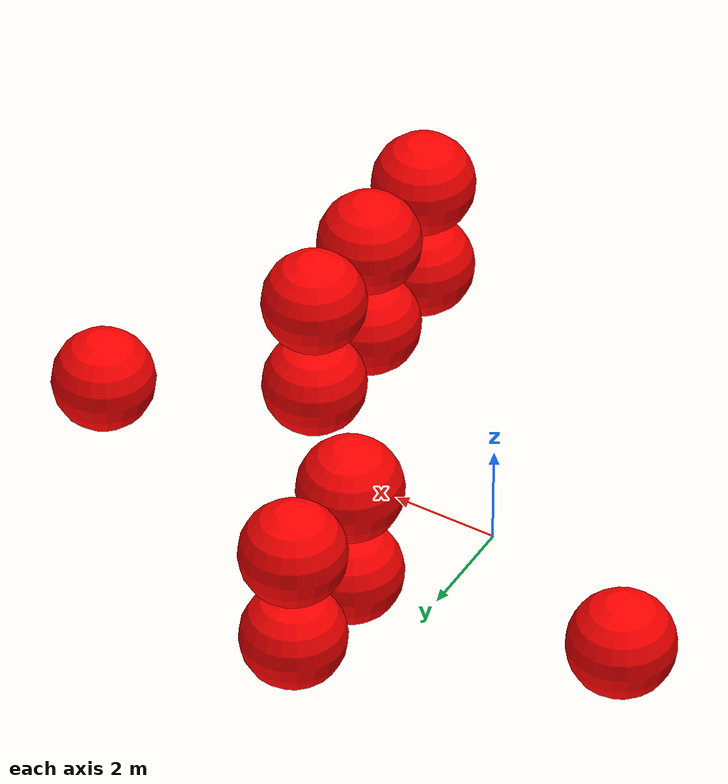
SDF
<sdf version="1.8">
 <world name="3d_world">
  <model name="obstacle_12" canonical_link="obstacle">
   <static>true</static>
   <pose relative_to="world">-3.87 2.22 1.00 0 0 0</pose>
   <link name="obstacle">
    <pose relative_to="__model__">0.0 0 0.0 0 0 0</pose>
    <visual name="visual">
     <geometry><sphere><radius>1.00</radius></sphere></geometry>
     <material>
      <ambient>1.0 0.0 0.0 1</ambient>
      <diffuse>1.0 0.0 0.0 1</diffuse>
      <specular>1.0 0.0 0.0 1</specular>
     </material>
    </visual>
    <collision name="collision"><geometry><sphere><radius>1.00</radius></sphere></geometry></collision>
    <enable_gravity>false</enable_gravity>
   </link>
   <plugin filename="ignition-gazebo-velocity-control-system" name="ignition::gazebo::systems::VelocityControl">
    <initial_linear>0.00 0.00 0.00</initial_linear>
    <initial_angular>0 0 0</initial_angular>
   </plugin>
   <plugin filename="ignition-gazebo-odometry-publisher-system" name="ignition::gazebo::systems::OdometryPublisher">
    <dimensions>3</dimensions>
   </plugin>
  </model>
  <model name="obstacle_13" canonical_link="obstacle">
   <static>true</static>
   <pose relative_to="world">2.30 1.16 -1.00 0 0 0</pose>
   <link name="obstacle">
    <pose relative_to="__model__">0.0 0 0.0 0 0 0</pose>
    <visual name="visual">
     <geometry><sphere><radius>1.00</radius></sphere></geometry>
     <material>
      <ambient>1.0 0.0 0.0 1</ambient>
      <diffuse>1.0 0.0 0.0 1</diffuse>
      <specular>1.0 0.0 0.0 1</specular>
     </material>
    </visual>
    <collision name="collision"><geometry><sphere><radius>1.00</radius></sphere></geometry></collision>
    <enable_gravity>false</enable_gravity>
   </link>
   <plugin filename="ignition-gazebo-velocity-control-system" name="ignition::gazebo::systems::VelocityControl">
    <initial_linear>0.00 0.00 0.00</initial_linear>
    <initial_angular>0 0 0</initial_angular>
   </plugin>
   <plugin filename="ignition-gazebo-odometry-publisher-system" name="ignition::gazebo::systems::OdometryPublisher">
    <dimensions>3</dimensions>
   </plugin>
  </model>
  <model name="obstacle_14" canonical_link="obstacle">
   <static>true</static>
   <pose relative_to="world">2.30 3.16 -1.00 0 0 0</pose>
   <link name="obstacle">
    <pose relative_to="__model__">0.0 0 0.0 0 0 0</pose>
    <visual name="visual">
     <geometry><sphere><radius>1.00</radius></sphere></geometry>
     <material>
      <ambient>1.0 0.0 0.0 1</ambient>
      <diffuse>1.0 0.0 0.0 1</diffuse>
      <specular>1.0 0.0 0.0 1</specular>
     </material>
    </visual>
    <collision name="collision"><geometry><sphere><radius>1.00</radius></sphere></geometry></collision>
    <enable_gravity>false</enable_gravity>
   </link>
   <plugin filename="ignition-gazebo-velocity-control-system" name="ignition::gazebo::systems::VelocityControl">
    <initial_linear>0.00 0.00 0.00</initial_linear>
    <initial_angular>0 0 0</initial_angular>
   </plugin>
   <plugin filename="ignition-gazebo-odometry-publisher-system" name="ignition::gazebo::systems::OdometryPublisher">
    <dimensions>3</dimensions>
   </plugin>
  </model>
  <model name="obstacle_15" canonical_link="obstacle">
   <static>true</static>
   <pose relative_to="world">2.30 1.16 1.00 0 0 0</pose>
   <link name="obstacle">
    <pose relative_to="__model__">0.0 0 0.0 0 0 0</pose>
    <visual name="visual">
     <geometry><sphere><radius>1.00</radius></sphere></geometry>
     <material>
      <ambient>1.0 0.0 0.0 1</ambient>
      <diffuse>1.0 0.0 0.0 1</diffuse>
      <specular>1.0 0.0 0.0 1</specular>
     </material>
    </visual>
    <collision name="collision"><geometry><sphere><radius>1.00</radius></sphere></geometry></collision>
    <enable_gravity>false</enable_gravity>
   </link>
   <plugin filename="ignition-gazebo-velocity-control-system" name="ignition::gazebo::systems::VelocityControl">
    <initial_linear>0.00 0.00 0.00</initial_linear>
    <initial_angular>0 0 0</initial_angular>
   </plugin>
   <plugin filename="ignition-gazebo-odometry-publisher-system" name="ignition::gazebo::systems::OdometryPublisher">
    <dimensions>3</dimensions>
   </plugin>
  </model>
  <model name="obstacle_16" canonical_link="obstacle">
   <static>true</static>
   <pose relative_to="world">2.30 3.16 1.00 0 0 0</pose>
   <link name="obstacle">
    <pose relative_to="__model__">0.0 0 0.0 0 0 0</pose>
    <visual name="visual">
     <geometry><sphere><radius>1.00</radius></sphere></geometry>
     <material>
      <ambient>1.0 0.0 0.0 1</ambient>
      <diffuse>1.0 0.0 0.0 1</diffuse>
      <specular>1.0 0.0 0.0 1</specular>
     </material>
    </visual>
    <collision name="collision"><geometry><sphere><radius>1.00</radius></sphere></geometry></collision>
    <enable_gravity>false</enable_gravity>
   </link>
   <plugin filename="ignition-gazebo-velocity-control-system" name="ignition::gazebo::systems::VelocityControl">
    <initial_linear>0.00 0.00 0.00</initial_linear>
    <initial_angular>0 0 0</initial_angular>
   </plugin>
   <plugin filename="ignition-gazebo-odometry-publisher-system" name="ignition::gazebo::systems::OdometryPublisher">
    <dimensions>3</dimensions>
   </plugin>
  </model>
  <model name="obstacle_17" canonical_link="obstacle">
   <static>true</static>
   <pose relative_to="world">5.52 -6.94 -1.00 0 0 0</pose>
   <link name="obstacle">
    <pose relative_to="__model__">0.0 0 0.0 0 0 0</pose>
    <visual name="visual">
     <geometry><sphere><radius>1.00</radius></sphere></geometry>
     <material>
      <ambient>1.0 0.0 0.0 1</ambient>
      <diffuse>1.0 0.0 0.0 1</diffuse>
      <specular>1.0 0.0 0.0 1</specular>
     </material>
    </visual>
    <collision name="collision"><geometry><sphere><radius>1.00</radius></sphere></geometry></collision>
    <enable_gravity>false</enable_gravity>
   </link>
   <plugin filename="ignition-gazebo-velocity-control-system" name="ignition::gazebo::systems::VelocityControl">
    <initial_linear>0.00 0.00 0.00</initial_linear>
    <initial_angular>0 0 0</initial_angular>
   </plugin>
   <plugin filename="ignition-gazebo-odometry-publisher-system" name="ignition::gazebo::systems::OdometryPublisher">
    <dimensions>3</dimensions>
   </plugin>
  </model>
  <model name="obstacle_18" canonical_link="obstacle">
   <static>true</static>
   <pose relative_to="world">5.52 -4.94 -1.00 0 0 0</pose>
   <link name="obstacle">
    <pose relative_to="__model__">0.0 0 0.0 0 0 0</pose>
    <visual name="visual">
     <geometry><sphere><radius>1.00</radius></sphere></geometry>
     <material>
      <ambient>1.0 0.0 0.0 1</ambient>
      <diffuse>1.0 0.0 0.0 1</diffuse>
      <specular>1.0 0.0 0.0 1</specular>
     </material>
    </visual>
    <collision name="collision"><geometry><sphere><radius>1.00</radius></sphere></geometry></collision>
    <enable_gravity>false</enable_gravity>
   </link>
   <plugin filename="ignition-gazebo-velocity-control-system" name="ignition::gazebo::systems::VelocityControl">
    <initial_linear>0.00 0.00 0.00</initial_linear>
    <initial_angular>0 0 0</initial_angular>
   </plugin>
   <plugin filename="ignition-gazebo-odometry-publisher-system" name="ignition::gazebo::systems::OdometryPublisher">
    <dimensions>3</dimensions>
   </plugin>
  </model>
  <model name="obstacle_19" canonical_link="obstacle">
   <static>true</static>
   <pose relative_to="world">5.52 -2.94 -1.00 0 0 0</pose>
   <link name="obstacle">
    <pose relative_to="__model__">0.0 0 0.0 0 0 0</pose>
    <visual name="visual">
     <geometry><sphere><radius>1.00</radius></sphere></geometry>
     <material>
      <ambient>1.0 0.0 0.0 1</ambient>
      <diffuse>1.0 0.0 0.0 1</diffuse>
      <specular>1.0 0.0 0.0 1</specular>
     </material>
    </visual>
    <collision name="collision"><geometry><sphere><radius>1.00</radius></sphere></geometry></collision>
    <enable_gravity>false</enable_gravity>
   </link>
   <plugin filename="ignition-gazebo-velocity-control-system" name="ignition::gazebo::systems::VelocityControl">
    <initial_linear>0.00 0.00 0.00</initial_linear>
    <initial_angular>0 0 0</initial_angular>
   </plugin>
   <plugin filename="ignition-gazebo-odometry-publisher-system" name="ignition::gazebo::systems::OdometryPublisher">
    <dimensions>3</dimensions>
   </plugin>
  </model>
  <model name="obstacle_20" canonical_link="obstacle">
   <static>true</static>
   <pose relative_to="world">5.52 -6.94 1.00 0 0 0</pose>
   <link name="obstacle">
    <pose relative_to="__model__">0.0 0 0.0 0 0 0</pose>
    <visual name="visual">
     <geometry><sphere><radius>1.00</radius></sphere></geometry>
     <material>
      <ambient>1.0 0.0 0.0 1</ambient>
      <diffuse>1.0 0.0 0.0 1</diffuse>
      <specular>1.0 0.0 0.0 1</specular>
     </material>
    </visual>
    <collision name="collision"><geometry><sphere><radius>1.00</radius></sphere></geometry></collision>
    <enable_gravity>false</enable_gravity>
   </link>
   <plugin filename="ignition-gazebo-velocity-control-system" name="ignition::gazebo::systems::VelocityControl">
    <initial_linear>0.00 0.00 0.00</initial_linear>
    <initial_angular>0 0 0</initial_angular>
   </plugin>
   <plugin filename="ignition-gazebo-odometry-publisher-system" name="ignition::gazebo::systems::OdometryPublisher">
    <dimensions>3</dimensions>
   </plugin>
  </model>
  <model name="obstacle_21" canonical_link="obstacle">
   <static>true</static>
   <pose relative_to="world">5.52 -4.94 1.00 0 0 0</pose>
   <link name="obstacle">
    <pose relative_to="__model__">0.0 0 0.0 0 0 0</pose>
    <visual name="visual">
     <geometry><sphere><radius>1.00</radius></sphere></geometry>
     <material>
      <ambient>1.0 0.0 0.0 1</ambient>
      <diffuse>1.0 0.0 0.0 1</diffuse>
      <specular>1.0 0.0 0.0 1</specular>
     </material>
    </visual>
    <collision name="collision"><geometry><sphere><radius>1.00</radius></sphere></geometry></collision>
    <enable_gravity>false</enable_gravity>
   </link>
   <plugin filename="ignition-gazebo-velocity-control-system" name="ignition::gazebo::systems::VelocityControl">
    <initial_linear>0.00 0.00 0.00</initial_linear>
    <initial_angular>0 0 0</initial_angular>
   </plugin>
   <plugin filename="ignition-gazebo-odometry-publisher-system" name="ignition::gazebo::systems::OdometryPublisher">
    <dimensions>3</dimensions>
   </plugin>
  </model>
  <model name="obstacle_22" canonical_link="obstacle">
   <static>true</static>
   <pose relative_to="world">5.52 -2.94 1.00 0 0 0</pose>
   <link name="obstacle">
    <pose relative_to="__model__">0.0 0 0.0 0 0 0</pose>
    <visual name="visual">
     <geometry><sphere><radius>1.00</radius></sphere></geometry>
     <material>
      <ambient>1.0 0.0 0.0 1</ambient>
      <diffuse>1.0 0.0 0.0 1</diffuse>
      <specular>1.0 0.0 0.0 1</specular>
     </material>
    </visual>
    <collision name="collision"><geometry><sphere><radius>1.00</radius></sphere></geometry></collision>
    <enable_gravity>false</enable_gravity>
   </link>
   <plugin filename="ignition-gazebo-velocity-control-system" name="ignition::gazebo::systems::VelocityControl">
    <initial_linear>0.00 0.00 0.00</initial_linear>
    <initial_angular>0 0 0</initial_angular>
   </plugin>
   <plugin filename="ignition-gazebo-odometry-publisher-system" name="ignition::gazebo::systems::OdometryPublisher">
    <dimensions>3</dimensions>
   </plugin>
  </model>
  <model name="obstacle_23" canonical_link="obstacle">
   <static>false</static>
   <pose relative_to="world">9.36 -1.63 -1.63 0 0 0</pose>
   <link name="obstacle">
    <pose relative_to="__model__">0.0 0 0.0 0 0 0</pose>
    <visual name="visual">
     <geometry><sphere><radius>1.00</radius></sphere></geometry>
     <material>
      <ambient>1.0 0.0 0.0 1</ambient>
      <diffuse>1.0 0.0 0.0 1</diffuse>
      <specular>1.0 0.0 0.0 1</specular>
     </material>
    </visual>
    <collision name="collision"><geometry><sphere><radius>1.00</radius></sphere></geometry></collision>
    <enable_gravity>false</enable_gravity>
   </link>
   <plugin filename="ignition-gazebo-velocity-control-system" name="ignition::gazebo::systems::VelocityControl">
    <initial_linear>0.00 0.47 0.44</initial_linear>
    <initial_angular>0 0 0</initial_angular>
   </plugin>
   <plugin filename="ignition-gazebo-odometry-publisher-system" name="ignition::gazebo::systems::OdometryPublisher">
    <dimensions>3</dimensions>
   </plugin>
  </model>
 </world>
</sdf>
